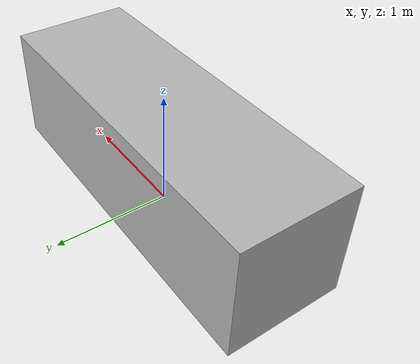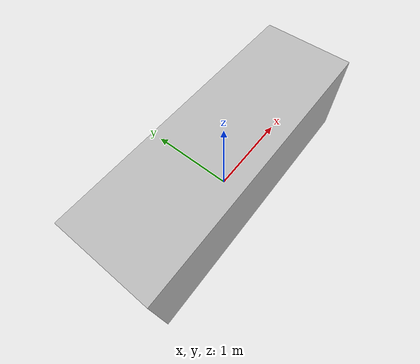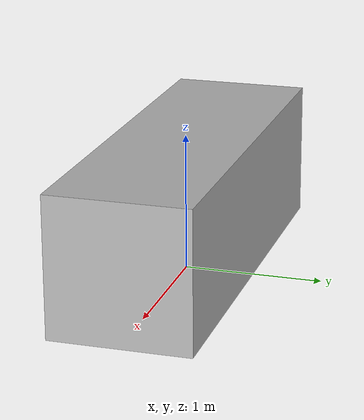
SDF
<?xml version="1.0" ?>
<sdf version="1.5">
  <model name="brick_box_3x1x3">
    <static>true</static>
    <link name="chassis">
      <pose>0 0 0.5 0 0 0</pose>
      <collision name="collision">
        <geometry>
          <box>
            <size>3.0 1.0 1.0</size>
          </box>
        </geometry>
      </collision>
      <visual name="visual">
        <geometry>
          <mesh>
            <uri>model://brick_box_3x1x3/meshes/simple_box.dae</uri>
            <scale>3.0 1.0 1.0</scale>
          </mesh>
        </geometry>
      </visual>
    </link>
  </model>
</sdf>
